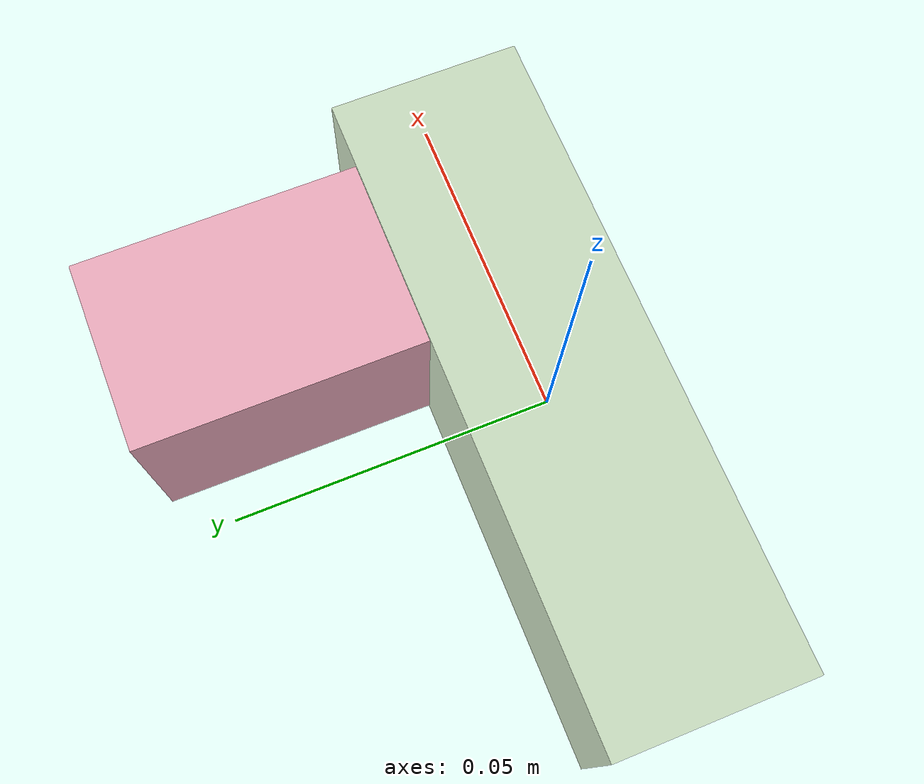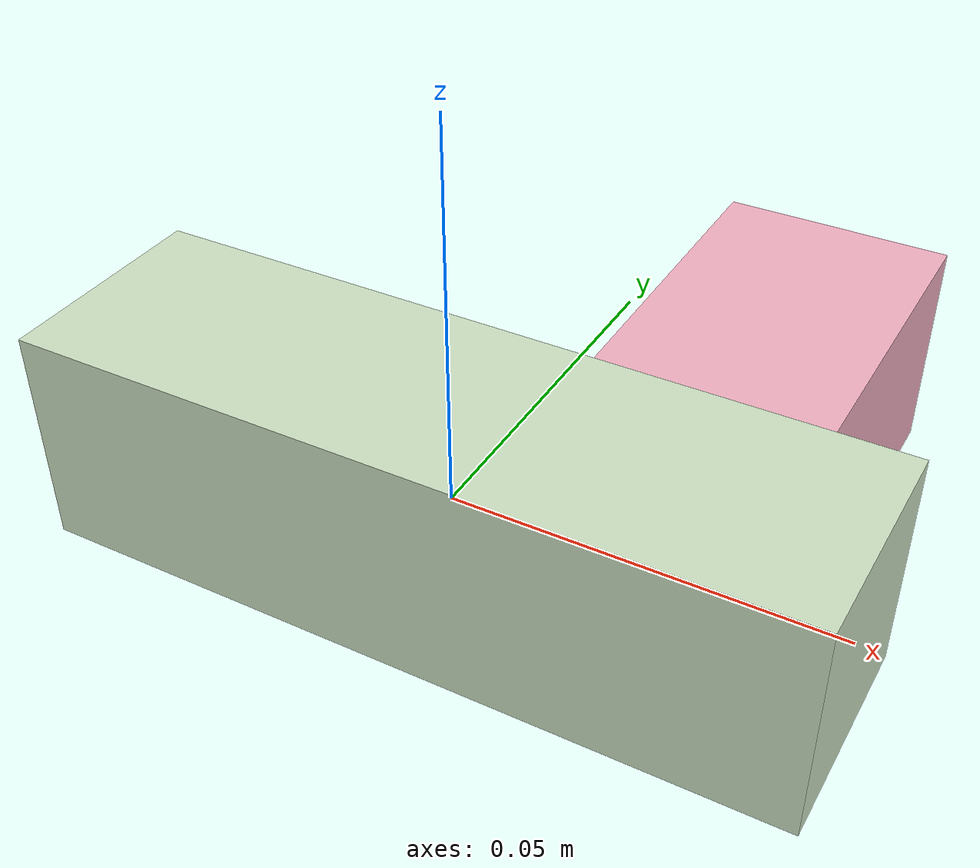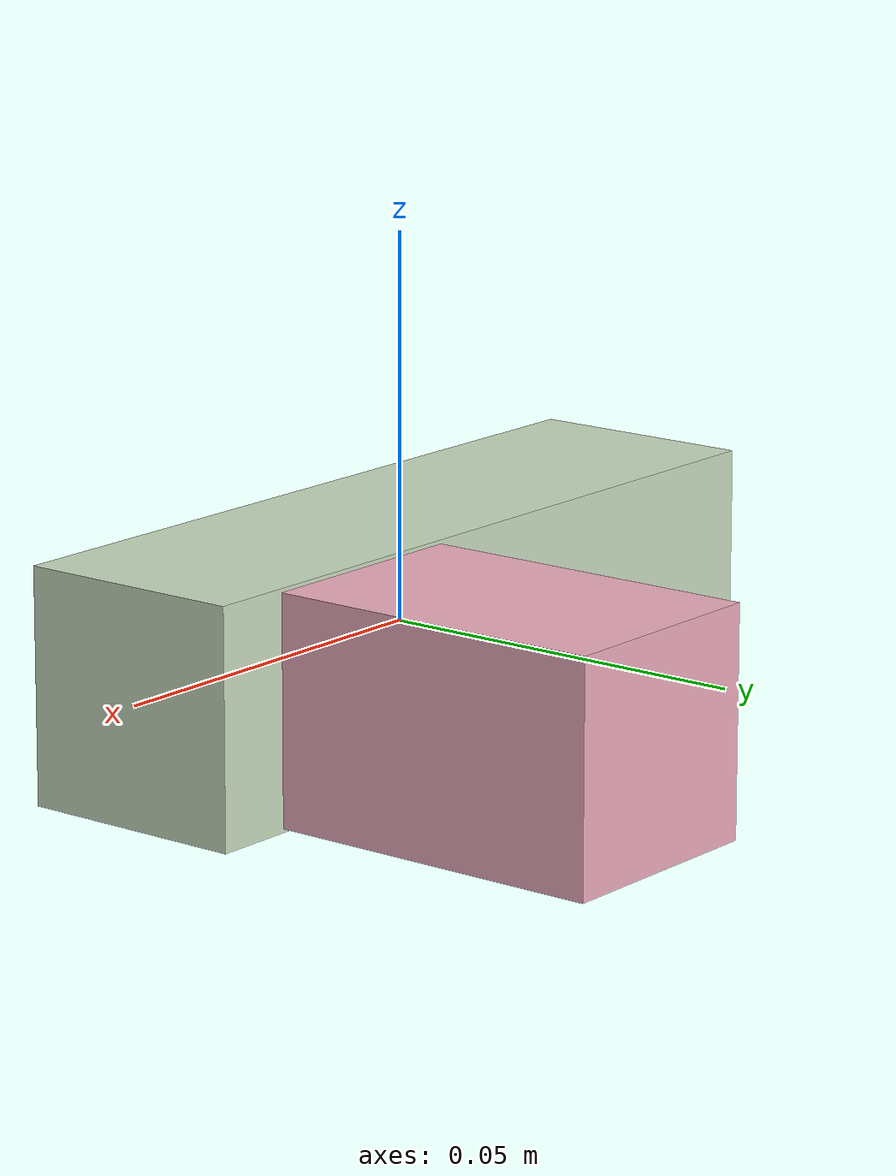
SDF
<sdf version="1.4"><world name="default"><model name="object0"><link name="link1"><pose>0 0 0 0 0 0</pose><inertial><pose>0 0 0 0 0 0</pose><mass>0.05513965591556501</mass><inertia><ixx>8.27094838733475e-06</ixx><ixy>0</ixy><iyy>5.204516734650348e-05</iyy><ixz>0</ixz><iyz>0</iyz><izz>5.204516734650348e-05</izz></inertia></inertial><visual name="link1_visual"><pose>0 0  0 0 0 0</pose><geometry><box><size>0.10211047391771298 0.03 0.03</size></box></geometry><material><diffuse>0.8002621460315475 0.8781228141346824 0.7626743366655823 1</diffuse></material></visual><collision><pose>0 0  0 0 0 0</pose><geometry><box><size>0.10211047391771298 0.03 0.03</size></box></geometry></collision></link><link name="link2"><pose>0.02561489511991734 0.034667591468654446 0 0 0 0</pose><inertial><pose>0 0 0 0 0 0</pose><mass>0.02666495634600087</mass><inertia><ixx>7.286954469985141e-06</ixx><ixy>0</ixy><iyy>3.868640749865626e-06</iyy><ixz>0</ixz><iyz>0</iyz><izz>7.4180571720196455e-06</izz></inertia></inertial><visual name="link2_visual"><pose>0 0  0 0 0 0</pose><geometry><box><size>0.03 0.049379548788890504 0.028999999999999998</size></box></geometry><material><diffuse>0.944670942569179 0.6869155686712427 0.7562759541628334 1</diffuse></material></visual><collision><pose>0 0  0 0 0 0</pose><geometry><box><size>0.03 0.049379548788890504 0.028999999999999998</size></box></geometry></collision></link><joint name="link_joint_0" type="fixed"><parent>link1</parent><child>link2</child><pose>0 0 0 0 0 0</pose><axis><xyz>0 0 1</xyz></axis></joint></model></world></sdf>
